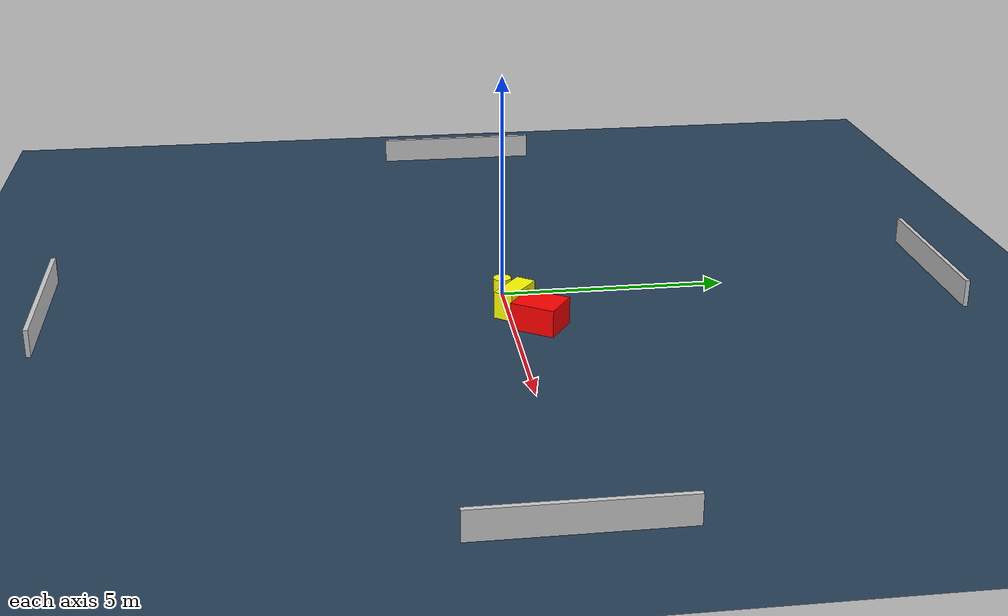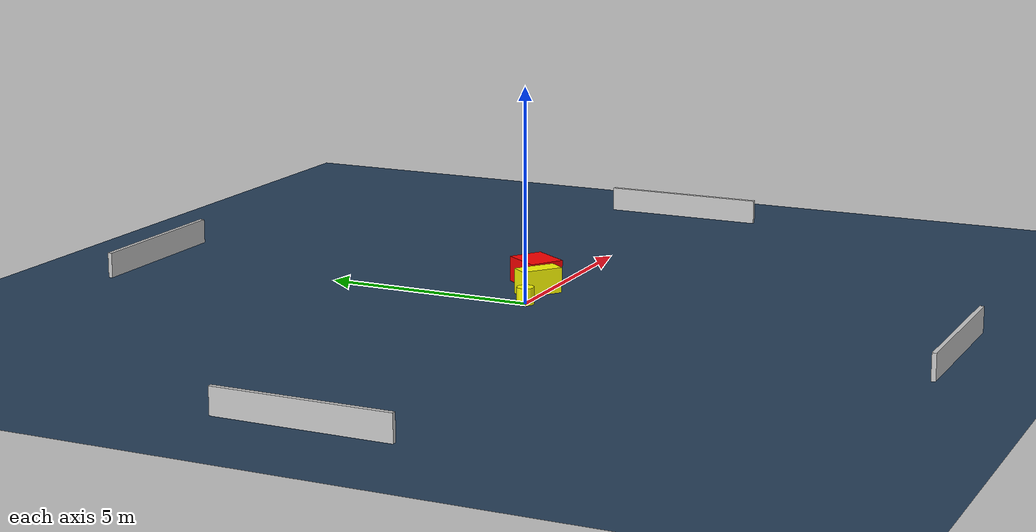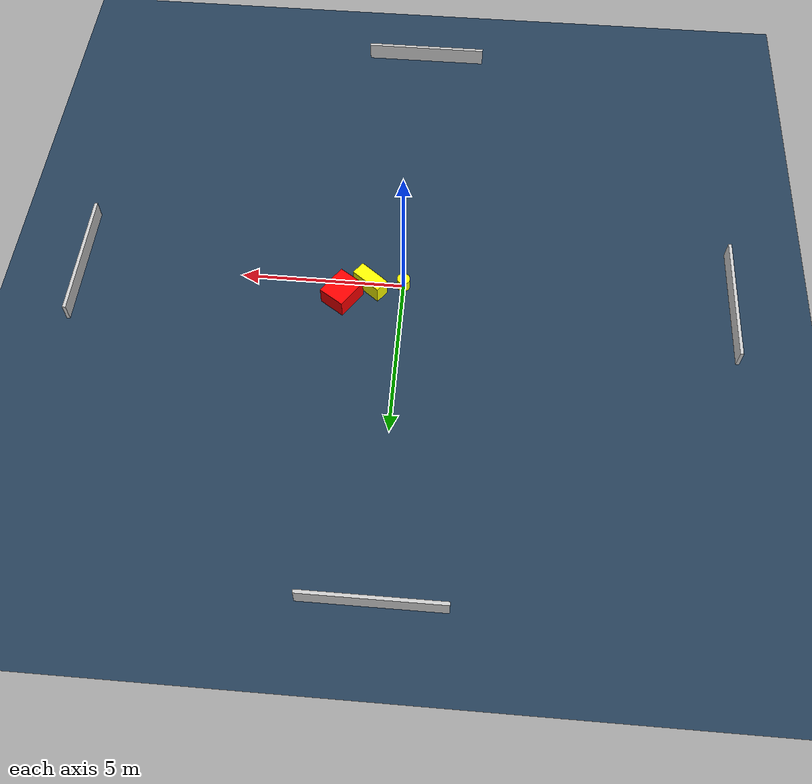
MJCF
<?xml version="1.0" ?>
<mujoco model="generated_environment">
  <option timestep="0.01" integrator="RK4" cone="elliptic"/>
  <default>
    <geom density="1"/>
  </default>
  <asset>
    <texture builtin="gradient" height="3072" name="skybox" rgb1="0.3 0.5 0.7" rgb2="0 0 0" type="skybox" width="512"/>
    <texture builtin="checker" height="300" name="groundplane" rgb1="0.2 0.3 0.4" rgb2="0.1 0.2 0.3" type="2d" width="300"/>
    <material name="groundplane" reflectance="0.2" texrepeat="5 5" texture="groundplane"/>
  </asset>
  <worldbody>
    <light dir="0 0 -1" directional="true" pos="0 0 1.5"/>
    <geom condim="3" friction="0.5 0.005 0.001" material="groundplane" name="floor" pos="0 0 0" size="0 0 0.05" type="plane"/>
    <body name="walls">
      <geom name="wall_1" condim="4" pos="-10.0 0.0 0.3" rgba="0.800000011920929 0.800000011920929 0.800000011920929 1.0" size="0.05 2.0 0.3" type="box"/>
      <geom name="wall_2" condim="4" pos="10.0 0.0 0.3" rgba="0.800000011920929 0.800000011920929 0.800000011920929 1.0" size="0.05 2.0 0.3" type="box"/>
      <geom name="wall_3" condim="4" pos="0.0 -10.0 0.3" rgba="0.800000011920929 0.800000011920929 0.800000011920929 1.0" size="2.0 0.05 0.3" type="box"/>
      <geom name="wall_4" condim="4" pos="0.0 10.0 0.3" rgba="0.800000011920929 0.800000011920929 0.800000011920929 1.0" size="2.0 0.05 0.3" type="box"/>
    </body>
    <body name="robot">
      <joint name="joint_x" type="slide" pos="0 0 0" axis="1 0 0"/>
      <joint name="joint_y" type="slide" pos="0 0 0" axis="0 1 0"/>
      <geom name="robot" type="cylinder" pos="0.0 0.0 0.2" size="0.2 0.2 0.0" mass="5.0" friction="1.0 0.005 0.0001" condim="4" rgba="1.0 1.0 0.0 1.0"/>
    </body>
    <body name="obstacle_1_movable">
      <geom name="obstacle_1_movable" condim="4" pos="1.0086589778577253 0.14199394721806471 0.3" euler="0 0 232.2244497792594" friction="0.0 0.005 0.001" rgba="1.0 1.0 0.0 1.0" size="0.2196089091962699 0.5053155474350699 0.3" type="box" mass="0.1"/>
      <joint type="free"/>
    </body>
    <body name="obstacle_2_static">
      <geom name="obstacle_2_static" condim="4" pos="1.8360967365944676 0.5753159840763524 0.3" euler="0 0 326.14515715968827" friction="0.0 0.005 0.001" rgba="1.0 0.0 0.0 1.0" size="0.42185078474812454 0.4956062145944066 0.3" type="box"/>
    </body>
  </worldbody>
  <actuator>
    <motor name="actuator_x" joint="joint_x" gear="1" ctrlrange="-1 1"/>
    <motor name="actuator_y" joint="joint_y" gear="1" ctrlrange="-1 1"/>
  </actuator>
</mujoco>
